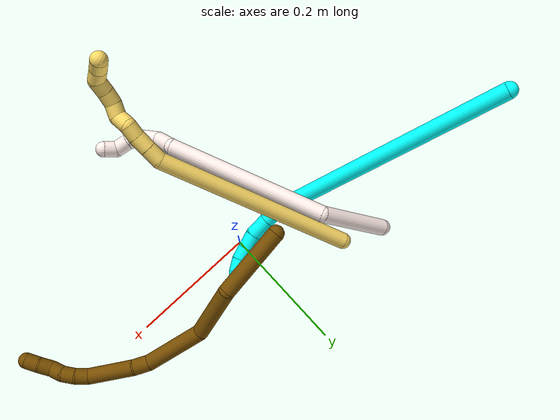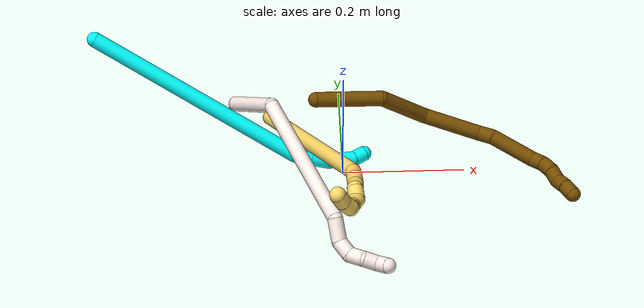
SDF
<sdf version="1.7">
 <world name="default">
  <model name="3">
   <static>0</static>
   <link name="3">
    <collision name="collision-cylinder-e_1_1_4">
     <pose>0.082164 -0.035865 -0.164601 2.92705 0.453782 2.26873</pose>
     <geometry><cylinder><radius>0.0125</radius><length>0.374864</length></cylinder></geometry>
     <surface>
      <friction><ode><mu>1.16</mu><mu2>1.16</mu2><slip1>0</slip1><slip2>0</slip2></ode></friction>
      <contact><ode><kp>1e+06</kp><kd>1</kd><max_vel>0</max_vel><min_depth>0.001</min_depth></ode></contact>
     </surface>
    </collision>
    <visual name="visual-cylinder-e_1_1_4">
     <pose>0.082164 -0.035865 -0.164601 2.92705 0.453782 2.26873</pose>
     <geometry><cylinder><radius>0.0125</radius><length>0.374864</length></cylinder></geometry>
     <material><ambient>0.003922 1 0.996078 1</ambient></material>
    </visual>
    <collision name="collision-cylinder-e_2_4_5">
     <pose>0.167229 -0.071087 -0.342678 -3.09386 0.211795 -2.69977</pose>
     <geometry><cylinder><radius>0.0125</radius><length>0.0276</length></cylinder></geometry>
     <surface>
      <friction><ode><mu>1.16</mu><mu2>1.16</mu2><slip1>0</slip1><slip2>0</slip2></ode></friction>
      <contact><ode><kp>1e+06</kp><kd>1</kd><max_vel>0</max_vel><min_depth>0.001</min_depth></ode></contact>
     </surface>
    </collision>
    <visual name="visual-cylinder-e_2_4_5">
     <pose>0.167229 -0.071087 -0.342678 -3.09386 0.211795 -2.69977</pose>
     <geometry><cylinder><radius>0.0125</radius><length>0.0276</length></cylinder></geometry>
     <material><ambient>0.003922 1 0.996078 1</ambient></material>
    </visual>
    <collision name="collision-cylinder-e_3_5_6">
     <pose>0.173451 -0.069166 -0.37144 -3.05824 0.213216 -2.39842</pose>
     <geometry><cylinder><radius>0.0125</radius><length>0.03139</length></cylinder></geometry>
     <surface>
      <friction><ode><mu>1.16</mu><mu2>1.16</mu2><slip1>0</slip1><slip2>0</slip2></ode></friction>
      <contact><ode><kp>1e+06</kp><kd>1</kd><max_vel>0</max_vel><min_depth>0.001</min_depth></ode></contact>
     </surface>
    </collision>
    <visual name="visual-cylinder-e_3_5_6">
     <pose>0.173451 -0.069166 -0.37144 -3.05824 0.213216 -2.39842</pose>
     <geometry><cylinder><radius>0.0125</radius><length>0.03139</length></cylinder></geometry>
     <material><ambient>0.003922 1 0.996078 1</ambient></material>
    </visual>
    <collision name="collision-cylinder-e_4_6_7">
     <pose>0.176426 -0.06525 -0.398292 -2.91726 -0.02917 0.257555</pose>
     <geometry><cylinder><radius>0.0125</radius><length>0.023736</length></cylinder></geometry>
     <surface>
      <friction><ode><mu>1.16</mu><mu2>1.16</mu2><slip1>0</slip1><slip2>0</slip2></ode></friction>
      <contact><ode><kp>1e+06</kp><kd>1</kd><max_vel>0</max_vel><min_depth>0.001</min_depth></ode></contact>
     </surface>
    </collision>
    <visual name="visual-cylinder-e_4_6_7">
     <pose>0.176426 -0.06525 -0.398292 -2.91726 -0.02917 0.257555</pose>
     <geometry><cylinder><radius>0.0125</radius><length>0.023736</length></cylinder></geometry>
     <material><ambient>0.003922 1 0.996078 1</ambient></material>
    </visual>
    <collision name="collision-cylinder-e_5_7_8">
     <pose>0.17577 -0.060061 -0.42027 -2.90138 -0.028948 0.238738</pose>
     <geometry><cylinder><radius>0.0125</radius><length>0.021448</length></cylinder></geometry>
     <surface>
      <friction><ode><mu>1.16</mu><mu2>1.16</mu2><slip1>0</slip1><slip2>0</slip2></ode></friction>
      <contact><ode><kp>1e+06</kp><kd>1</kd><max_vel>0</max_vel><min_depth>0.001</min_depth></ode></contact>
     </surface>
    </collision>
    <visual name="visual-cylinder-e_5_7_8">
     <pose>0.17577 -0.060061 -0.42027 -2.90138 -0.028948 0.238738</pose>
     <geometry><cylinder><radius>0.0125</radius><length>0.021448</length></cylinder></geometry>
     <material><ambient>0.003922 1 0.996078 1</ambient></material>
    </visual>
    <collision name="collision-cylinder-e_6_8_2">
     <pose>0.172913 -0.052532 -0.439546 -2.62993 -0.24543 0.881219</pose>
     <geometry><cylinder><radius>0.0125</radius><length>0.020963</length></cylinder></geometry>
     <surface>
      <friction><ode><mu>1.16</mu><mu2>1.16</mu2><slip1>0</slip1><slip2>0</slip2></ode></friction>
      <contact><ode><kp>1e+06</kp><kd>1</kd><max_vel>0</max_vel><min_depth>0.001</min_depth></ode></contact>
     </surface>
    </collision>
    <visual name="visual-cylinder-e_6_8_2">
     <pose>0.172913 -0.052532 -0.439546 -2.62993 -0.24543 0.881219</pose>
     <geometry><cylinder><radius>0.0125</radius><length>0.020963</length></cylinder></geometry>
     <material><ambient>0.003922 1 0.996078 1</ambient></material>
    </visual>
    <collision name="collision-sphere-2">
     <pose>0.170366 -0.047554 -0.448412 0 -0 0</pose>
     <geometry><sphere><radius>0.0125</radius></sphere></geometry>
     <surface>
      <friction><ode><mu>1.16</mu><mu2>1.16</mu2><slip1>0</slip1><slip2>0</slip2></ode></friction>
      <contact><ode><kp>1e+06</kp><kd>1</kd><max_vel>0</max_vel><min_depth>0.001</min_depth></ode></contact>
     </surface>
    </collision>
    <visual name="visual-sphere-2">
     <pose>0.170366 -0.047554 -0.448412 0 -0 0</pose>
     <geometry><sphere><radius>0.0125</radius></sphere></geometry>
     <material><ambient>0.003922 1 0.996078 1</ambient></material>
    </visual>
    <collision name="collision-sphere-4">
     <pose>0.164329 -0.071731 -0.329202 0 -0 0</pose>
     <geometry><sphere><radius>0.0125</radius></sphere></geometry>
     <surface>
      <friction><ode><mu>1.16</mu><mu2>1.16</mu2><slip1>0</slip1><slip2>0</slip2></ode></friction>
      <contact><ode><kp>1e+06</kp><kd>1</kd><max_vel>0</max_vel><min_depth>0.001</min_depth></ode></contact>
     </surface>
    </collision>
    <visual name="visual-sphere-4">
     <pose>0.164329 -0.071731 -0.329202 0 -0 0</pose>
     <geometry><sphere><radius>0.0125</radius></sphere></geometry>
     <material><ambient>0.003922 1 0.996078 1</ambient></material>
    </visual>
    <collision name="collision-sphere-1">
     <geometry><sphere><radius>0.0125</radius></sphere></geometry>
     <surface>
      <friction><ode><mu>1.16</mu><mu2>1.16</mu2><slip1>0</slip1><slip2>0</slip2></ode></friction>
      <contact><ode><kp>1e+06</kp><kd>1</kd><max_vel>0</max_vel><min_depth>0.001</min_depth></ode></contact>
     </surface>
    </collision>
    <visual name="visual-sphere-1">
     <geometry><sphere><radius>0.0125</radius></sphere></geometry>
     <material><ambient>0.003922 1 0.996078 1</ambient></material>
    </visual>
    <collision name="collision-sphere-8">
     <pose>0.17546 -0.05751 -0.430681 0 -0 0</pose>
     <geometry><sphere><radius>0.0125</radius></sphere></geometry>
     <surface>
      <friction><ode><mu>1.16</mu><mu2>1.16</mu2><slip1>0</slip1><slip2>0</slip2></ode></friction>
      <contact><ode><kp>1e+06</kp><kd>1</kd><max_vel>0</max_vel><min_depth>0.001</min_depth></ode></contact>
     </surface>
    </collision>
    <visual name="visual-sphere-8">
     <pose>0.17546 -0.05751 -0.430681 0 -0 0</pose>
     <geometry><sphere><radius>0.0125</radius></sphere></geometry>
     <material><ambient>0.003922 1 0.996078 1</ambient></material>
    </visual>
    <collision name="collision-sphere-5">
     <pose>0.17013 -0.070443 -0.356154 0 -0 0</pose>
     <geometry><sphere><radius>0.0125</radius></sphere></geometry>
     <surface>
      <friction><ode><mu>1.16</mu><mu2>1.16</mu2><slip1>0</slip1><slip2>0</slip2></ode></friction>
      <contact><ode><kp>1e+06</kp><kd>1</kd><max_vel>0</max_vel><min_depth>0.001</min_depth></ode></contact>
     </surface>
    </collision>
    <visual name="visual-sphere-5">
     <pose>0.17013 -0.070443 -0.356154 0 -0 0</pose>
     <geometry><sphere><radius>0.0125</radius></sphere></geometry>
     <material><ambient>0.003922 1 0.996078 1</ambient></material>
    </visual>
    <collision name="collision-sphere-6">
     <pose>0.176773 -0.067889 -0.386727 0 -0 0</pose>
     <geometry><sphere><radius>0.0125</radius></sphere></geometry>
     <surface>
      <friction><ode><mu>1.16</mu><mu2>1.16</mu2><slip1>0</slip1><slip2>0</slip2></ode></friction>
      <contact><ode><kp>1e+06</kp><kd>1</kd><max_vel>0</max_vel><min_depth>0.001</min_depth></ode></contact>
     </surface>
    </collision>
    <visual name="visual-sphere-6">
     <pose>0.176773 -0.067889 -0.386727 0 -0 0</pose>
     <geometry><sphere><radius>0.0125</radius></sphere></geometry>
     <material><ambient>0.003922 1 0.996078 1</ambient></material>
    </visual>
    <collision name="collision-sphere-7">
     <pose>0.17608 -0.062611 -0.409858 0 -0 0</pose>
     <geometry><sphere><radius>0.0125</radius></sphere></geometry>
     <surface>
      <friction><ode><mu>1.16</mu><mu2>1.16</mu2><slip1>0</slip1><slip2>0</slip2></ode></friction>
      <contact><ode><kp>1e+06</kp><kd>1</kd><max_vel>0</max_vel><min_depth>0.001</min_depth></ode></contact>
     </surface>
    </collision>
    <visual name="visual-sphere-7">
     <pose>0.17608 -0.062611 -0.409858 0 -0 0</pose>
     <geometry><sphere><radius>0.0125</radius></sphere></geometry>
     <material><ambient>0.003922 1 0.996078 1</ambient></material>
    </visual>
    <inertial>
     <pose>0.104886 -0.043032 -0.221004 0 -0 0</pose>
     <mass>0.5</mass>
     <inertia>
      <ixx>0.0005</ixx>
      <ixy>0</ixy>
      <ixz>0</ixz>
      <iyy>0.006109</iyy>
      <iyz>0</iyz>
      <izz>-0.001126</izz>
     </inertia>
    </inertial>
   </link>
   <pose>-0.397509 0.1016 0.212309 1.13137 -0.180629 -1.23198</pose>
  </model>
  <model name="5">
   <static>0</static>
   <link name="5">
    <collision name="collision-cylinder-e_1_1_4">
     <pose>0.023404 -0.002144 0.155188 0.013815 0.149667 0.001036</pose>
     <geometry><cylinder><radius>0.0125</radius><length>0.313915</length></cylinder></geometry>
     <surface>
      <friction><ode><mu>1.16</mu><mu2>1.16</mu2><slip1>0</slip1><slip2>0</slip2></ode></friction>
      <contact><ode><kp>1e+06</kp><kd>1</kd><max_vel>0</max_vel><min_depth>0.001</min_depth></ode></contact>
     </surface>
    </collision>
    <visual name="visual-cylinder-e_1_1_4">
     <pose>0.023404 -0.002144 0.155188 0.013815 0.149667 0.001036</pose>
     <geometry><cylinder><radius>0.0125</radius><length>0.313915</length></cylinder></geometry>
     <material><ambient>1 0.858824 0.4 1</ambient></material>
    </visual>
    <collision name="collision-cylinder-e_2_4_5">
     <pose>0.044251 -0.005403 0.321786 0.097442 -0.219377 -0.01074</pose>
     <geometry><cylinder><radius>0.0125</radius><length>0.023491</length></cylinder></geometry>
     <surface>
      <friction><ode><mu>1.16</mu><mu2>1.16</mu2><slip1>0</slip1><slip2>0</slip2></ode></friction>
      <contact><ode><kp>1e+06</kp><kd>1</kd><max_vel>0</max_vel><min_depth>0.001</min_depth></ode></contact>
     </surface>
    </collision>
    <visual name="visual-cylinder-e_2_4_5">
     <pose>0.044251 -0.005403 0.321786 0.097442 -0.219377 -0.01074</pose>
     <geometry><cylinder><radius>0.0125</radius><length>0.023491</length></cylinder></geometry>
     <material><ambient>1 0.858824 0.4 1</ambient></material>
    </visual>
    <collision name="collision-cylinder-e_3_5_6">
     <pose>0.039161 -0.008139 0.344027 0.148506 -0.227374 -0.016987</pose>
     <geometry><cylinder><radius>0.0125</radius><length>0.022485</length></cylinder></geometry>
     <surface>
      <friction><ode><mu>1.16</mu><mu2>1.16</mu2><slip1>0</slip1><slip2>0</slip2></ode></friction>
      <contact><ode><kp>1e+06</kp><kd>1</kd><max_vel>0</max_vel><min_depth>0.001</min_depth></ode></contact>
     </surface>
    </collision>
    <visual name="visual-cylinder-e_3_5_6">
     <pose>0.039161 -0.008139 0.344027 0.148506 -0.227374 -0.016987</pose>
     <geometry><cylinder><radius>0.0125</radius><length>0.022485</length></cylinder></geometry>
     <material><ambient>1 0.858824 0.4 1</ambient></material>
    </visual>
    <collision name="collision-cylinder-e_4_6_7">
     <pose>0.033163 -0.010058 0.364285 0.031599 -0.352017 -0.00562</pose>
     <geometry><cylinder><radius>0.0125</radius><length>0.020091</length></cylinder></geometry>
     <surface>
      <friction><ode><mu>1.16</mu><mu2>1.16</mu2><slip1>0</slip1><slip2>0</slip2></ode></friction>
      <contact><ode><kp>1e+06</kp><kd>1</kd><max_vel>0</max_vel><min_depth>0.001</min_depth></ode></contact>
     </surface>
    </collision>
    <visual name="visual-cylinder-e_4_6_7">
     <pose>0.033163 -0.010058 0.364285 0.031599 -0.352017 -0.00562</pose>
     <geometry><cylinder><radius>0.0125</radius><length>0.020091</length></cylinder></geometry>
     <material><ambient>1 0.858824 0.4 1</ambient></material>
    </visual>
    <collision name="collision-cylinder-e_5_7_8">
     <pose>0.028727 -0.016496 0.381547 0.664584 -0.097412 -0.033639</pose>
     <geometry><cylinder><radius>0.0125</radius><length>0.020008</length></cylinder></geometry>
     <surface>
      <friction><ode><mu>1.16</mu><mu2>1.16</mu2><slip1>0</slip1><slip2>0</slip2></ode></friction>
      <contact><ode><kp>1e+06</kp><kd>1</kd><max_vel>0</max_vel><min_depth>0.001</min_depth></ode></contact>
     </surface>
    </collision>
    <visual name="visual-cylinder-e_5_7_8">
     <pose>0.028727 -0.016496 0.381547 0.664584 -0.097412 -0.033639</pose>
     <geometry><cylinder><radius>0.0125</radius><length>0.020008</length></cylinder></geometry>
     <material><ambient>1 0.858824 0.4 1</ambient></material>
    </visual>
    <collision name="collision-cylinder-e_6_8_9">
     <pose>0.021577 -0.023939 0.397146 0.166231 -0.665478 -0.057564</pose>
     <geometry><cylinder><radius>0.0125</radius><length>0.020009</length></cylinder></geometry>
     <surface>
      <friction><ode><mu>1.16</mu><mu2>1.16</mu2><slip1>0</slip1><slip2>0</slip2></ode></friction>
      <contact><ode><kp>1e+06</kp><kd>1</kd><max_vel>0</max_vel><min_depth>0.001</min_depth></ode></contact>
     </surface>
    </collision>
    <visual name="visual-cylinder-e_6_8_9">
     <pose>0.021577 -0.023939 0.397146 0.166231 -0.665478 -0.057564</pose>
     <geometry><cylinder><radius>0.0125</radius><length>0.020009</length></cylinder></geometry>
     <material><ambient>1 0.858824 0.4 1</ambient></material>
    </visual>
    <collision name="collision-cylinder-e_7_9_10">
     <pose>0.011522 -0.023572 0.413973 -0.182021 -0.398177 0.036822</pose>
     <geometry><cylinder><radius>0.0125</radius><length>0.020001</length></cylinder></geometry>
     <surface>
      <friction><ode><mu>1.16</mu><mu2>1.16</mu2><slip1>0</slip1><slip2>0</slip2></ode></friction>
      <contact><ode><kp>1e+06</kp><kd>1</kd><max_vel>0</max_vel><min_depth>0.001</min_depth></ode></contact>
     </surface>
    </collision>
    <visual name="visual-cylinder-e_7_9_10">
     <pose>0.011522 -0.023572 0.413973 -0.182021 -0.398177 0.036822</pose>
     <geometry><cylinder><radius>0.0125</radius><length>0.020001</length></cylinder></geometry>
     <material><ambient>1 0.858824 0.4 1</ambient></material>
    </visual>
    <collision name="collision-cylinder-e_8_10_11">
     <pose>0.004565 -0.019164 0.43215 -0.292146 -0.313056 0.046429</pose>
     <geometry><cylinder><radius>0.0125</radius><length>0.02</length></cylinder></geometry>
     <surface>
      <friction><ode><mu>1.16</mu><mu2>1.16</mu2><slip1>0</slip1><slip2>0</slip2></ode></friction>
      <contact><ode><kp>1e+06</kp><kd>1</kd><max_vel>0</max_vel><min_depth>0.001</min_depth></ode></contact>
     </surface>
    </collision>
    <visual name="visual-cylinder-e_8_10_11">
     <pose>0.004565 -0.019164 0.43215 -0.292146 -0.313056 0.046429</pose>
     <geometry><cylinder><radius>0.0125</radius><length>0.02</length></cylinder></geometry>
     <material><ambient>1 0.858824 0.4 1</ambient></material>
    </visual>
    <collision name="collision-cylinder-e_9_11_12">
     <pose>-0.005456 -0.010217 0.444907 -1.03964 -0.767189 0.454002</pose>
     <geometry><cylinder><radius>0.0125</radius><length>0.02</length></cylinder></geometry>
     <surface>
      <friction><ode><mu>1.16</mu><mu2>1.16</mu2><slip1>0</slip1><slip2>0</slip2></ode></friction>
      <contact><ode><kp>1e+06</kp><kd>1</kd><max_vel>0</max_vel><min_depth>0.001</min_depth></ode></contact>
     </surface>
    </collision>
    <visual name="visual-cylinder-e_9_11_12">
     <pose>-0.005456 -0.010217 0.444907 -1.03964 -0.767189 0.454002</pose>
     <geometry><cylinder><radius>0.0125</radius><length>0.02</length></cylinder></geometry>
     <material><ambient>1 0.858824 0.4 1</ambient></material>
    </visual>
    <collision name="collision-cylinder-e_10_12_2">
     <pose>-0.017849 0.003503 0.452274 -1.11096 -0.57658 0.364046</pose>
     <geometry><cylinder><radius>0.0125</radius><length>0.02</length></cylinder></geometry>
     <surface>
      <friction><ode><mu>1.16</mu><mu2>1.16</mu2><slip1>0</slip1><slip2>0</slip2></ode></friction>
      <contact><ode><kp>1e+06</kp><kd>1</kd><max_vel>0</max_vel><min_depth>0.001</min_depth></ode></contact>
     </surface>
    </collision>
    <visual name="visual-cylinder-e_10_12_2">
     <pose>-0.017849 0.003503 0.452274 -1.11096 -0.57658 0.364046</pose>
     <geometry><cylinder><radius>0.0125</radius><length>0.02</length></cylinder></geometry>
     <material><ambient>1 0.858824 0.4 1</ambient></material>
    </visual>
    <collision name="collision-sphere-2">
     <pose>-0.023301 0.011016 0.455995 0 -0 0</pose>
     <geometry><sphere><radius>0.0125</radius></sphere></geometry>
     <surface>
      <friction><ode><mu>1.16</mu><mu2>1.16</mu2><slip1>0</slip1><slip2>0</slip2></ode></friction>
      <contact><ode><kp>1e+06</kp><kd>1</kd><max_vel>0</max_vel><min_depth>0.001</min_depth></ode></contact>
     </surface>
    </collision>
    <visual name="visual-sphere-2">
     <pose>-0.023301 0.011016 0.455995 0 -0 0</pose>
     <geometry><sphere><radius>0.0125</radius></sphere></geometry>
     <material><ambient>1 0.858824 0.4 1</ambient></material>
    </visual>
    <collision name="collision-sphere-12">
     <pose>-0.012397 -0.00401 0.448553 0 -0 0</pose>
     <geometry><sphere><radius>0.0125</radius></sphere></geometry>
     <surface>
      <friction><ode><mu>1.16</mu><mu2>1.16</mu2><slip1>0</slip1><slip2>0</slip2></ode></friction>
      <contact><ode><kp>1e+06</kp><kd>1</kd><max_vel>0</max_vel><min_depth>0.001</min_depth></ode></contact>
     </surface>
    </collision>
    <visual name="visual-sphere-12">
     <pose>-0.012397 -0.00401 0.448553 0 -0 0</pose>
     <geometry><sphere><radius>0.0125</radius></sphere></geometry>
     <material><ambient>1 0.858824 0.4 1</ambient></material>
    </visual>
    <collision name="collision-sphere-11">
     <pose>0.001485 -0.016423 0.441261 0 -0 0</pose>
     <geometry><sphere><radius>0.0125</radius></sphere></geometry>
     <surface>
      <friction><ode><mu>1.16</mu><mu2>1.16</mu2><slip1>0</slip1><slip2>0</slip2></ode></friction>
      <contact><ode><kp>1e+06</kp><kd>1</kd><max_vel>0</max_vel><min_depth>0.001</min_depth></ode></contact>
     </surface>
    </collision>
    <visual name="visual-sphere-11">
     <pose>0.001485 -0.016423 0.441261 0 -0 0</pose>
     <geometry><sphere><radius>0.0125</radius></sphere></geometry>
     <material><ambient>1 0.858824 0.4 1</ambient></material>
    </visual>
    <collision name="collision-sphere-10">
     <pose>0.007644 -0.021904 0.423039 0 -0 0</pose>
     <geometry><sphere><radius>0.0125</radius></sphere></geometry>
     <surface>
      <friction><ode><mu>1.16</mu><mu2>1.16</mu2><slip1>0</slip1><slip2>0</slip2></ode></friction>
      <contact><ode><kp>1e+06</kp><kd>1</kd><max_vel>0</max_vel><min_depth>0.001</min_depth></ode></contact>
     </surface>
    </collision>
    <visual name="visual-sphere-10">
     <pose>0.007644 -0.021904 0.423039 0 -0 0</pose>
     <geometry><sphere><radius>0.0125</radius></sphere></geometry>
     <material><ambient>1 0.858824 0.4 1</ambient></material>
    </visual>
    <collision name="collision-sphere-9">
     <pose>0.0154 -0.025241 0.404907 0 -0 0</pose>
     <geometry><sphere><radius>0.0125</radius></sphere></geometry>
     <surface>
      <friction><ode><mu>1.16</mu><mu2>1.16</mu2><slip1>0</slip1><slip2>0</slip2></ode></friction>
      <contact><ode><kp>1e+06</kp><kd>1</kd><max_vel>0</max_vel><min_depth>0.001</min_depth></ode></contact>
     </surface>
    </collision>
    <visual name="visual-sphere-9">
     <pose>0.0154 -0.025241 0.404907 0 -0 0</pose>
     <geometry><sphere><radius>0.0125</radius></sphere></geometry>
     <material><ambient>1 0.858824 0.4 1</ambient></material>
    </visual>
    <collision name="collision-sphere-4">
     <pose>0.046807 -0.004288 0.310376 0 -0 0</pose>
     <geometry><sphere><radius>0.0125</radius></sphere></geometry>
     <surface>
      <friction><ode><mu>1.16</mu><mu2>1.16</mu2><slip1>0</slip1><slip2>0</slip2></ode></friction>
      <contact><ode><kp>1e+06</kp><kd>1</kd><max_vel>0</max_vel><min_depth>0.001</min_depth></ode></contact>
     </surface>
    </collision>
    <visual name="visual-sphere-4">
     <pose>0.046807 -0.004288 0.310376 0 -0 0</pose>
     <geometry><sphere><radius>0.0125</radius></sphere></geometry>
     <material><ambient>1 0.858824 0.4 1</ambient></material>
    </visual>
    <collision name="collision-sphere-1">
     <geometry><sphere><radius>0.0125</radius></sphere></geometry>
     <surface>
      <friction><ode><mu>1.16</mu><mu2>1.16</mu2><slip1>0</slip1><slip2>0</slip2></ode></friction>
      <contact><ode><kp>1e+06</kp><kd>1</kd><max_vel>0</max_vel><min_depth>0.001</min_depth></ode></contact>
     </surface>
    </collision>
    <visual name="visual-sphere-1">
     <geometry><sphere><radius>0.0125</radius></sphere></geometry>
     <material><ambient>1 0.858824 0.4 1</ambient></material>
    </visual>
    <collision name="collision-sphere-8">
     <pose>0.027754 -0.022637 0.389385 0 -0 0</pose>
     <geometry><sphere><radius>0.0125</radius></sphere></geometry>
     <surface>
      <friction><ode><mu>1.16</mu><mu2>1.16</mu2><slip1>0</slip1><slip2>0</slip2></ode></friction>
      <contact><ode><kp>1e+06</kp><kd>1</kd><max_vel>0</max_vel><min_depth>0.001</min_depth></ode></contact>
     </surface>
    </collision>
    <visual name="visual-sphere-8">
     <pose>0.027754 -0.022637 0.389385 0 -0 0</pose>
     <geometry><sphere><radius>0.0125</radius></sphere></geometry>
     <material><ambient>1 0.858824 0.4 1</ambient></material>
    </visual>
    <collision name="collision-sphere-5">
     <pose>0.041695 -0.006519 0.333195 0 -0 0</pose>
     <geometry><sphere><radius>0.0125</radius></sphere></geometry>
     <surface>
      <friction><ode><mu>1.16</mu><mu2>1.16</mu2><slip1>0</slip1><slip2>0</slip2></ode></friction>
      <contact><ode><kp>1e+06</kp><kd>1</kd><max_vel>0</max_vel><min_depth>0.001</min_depth></ode></contact>
     </surface>
    </collision>
    <visual name="visual-sphere-5">
     <pose>0.041695 -0.006519 0.333195 0 -0 0</pose>
     <geometry><sphere><radius>0.0125</radius></sphere></geometry>
     <material><ambient>1 0.858824 0.4 1</ambient></material>
    </visual>
    <collision name="collision-sphere-6">
     <pose>0.036627 -0.00976 0.35486 0 -0 0</pose>
     <geometry><sphere><radius>0.0125</radius></sphere></geometry>
     <surface>
      <friction><ode><mu>1.16</mu><mu2>1.16</mu2><slip1>0</slip1><slip2>0</slip2></ode></friction>
      <contact><ode><kp>1e+06</kp><kd>1</kd><max_vel>0</max_vel><min_depth>0.001</min_depth></ode></contact>
     </surface>
    </collision>
    <visual name="visual-sphere-6">
     <pose>0.036627 -0.00976 0.35486 0 -0 0</pose>
     <geometry><sphere><radius>0.0125</radius></sphere></geometry>
     <material><ambient>1 0.858824 0.4 1</ambient></material>
    </visual>
    <collision name="collision-sphere-7">
     <pose>0.0297 -0.010356 0.37371 0 -0 0</pose>
     <geometry><sphere><radius>0.0125</radius></sphere></geometry>
     <surface>
      <friction><ode><mu>1.16</mu><mu2>1.16</mu2><slip1>0</slip1><slip2>0</slip2></ode></friction>
      <contact><ode><kp>1e+06</kp><kd>1</kd><max_vel>0</max_vel><min_depth>0.001</min_depth></ode></contact>
     </surface>
    </collision>
    <visual name="visual-sphere-7">
     <pose>0.0297 -0.010356 0.37371 0 -0 0</pose>
     <geometry><sphere><radius>0.0125</radius></sphere></geometry>
     <material><ambient>1 0.858824 0.4 1</ambient></material>
    </visual>
    <inertial>
     <pose>0.02159 -0.005966 0.243553 0 -0 0</pose>
     <mass>0.5</mass>
     <inertia>
      <ixx>0.002575</ixx>
      <ixy>0</ixy>
      <ixz>0</ixz>
      <iyy>0.002607</iyy>
      <iyz>0</iyz>
      <izz>-0.000311</izz>
     </inertia>
    </inertial>
   </link>
   <pose>-0.118313 0.107067 0.03204 1.15443 0.120013 0.239807</pose>
  </model>
  <model name="11">
   <static>0</static>
   <link name="11">
    <collision name="collision-cylinder-e_1_1_4">
     <pose>-0.018468 -0.044573 -0.030807 2.17556 -0.328495 -0.612189</pose>
     <geometry><cylinder><radius>0.0125</radius><length>0.114489</length></cylinder></geometry>
     <surface>
      <friction><ode><mu>1.16</mu><mu2>1.16</mu2><slip1>0</slip1><slip2>0</slip2></ode></friction>
      <contact><ode><kp>1e+06</kp><kd>1</kd><max_vel>0</max_vel><min_depth>0.001</min_depth></ode></contact>
     </surface>
    </collision>
    <visual name="visual-cylinder-e_1_1_4">
     <pose>-0.018468 -0.044573 -0.030807 2.17556 -0.328495 -0.612189</pose>
     <geometry><cylinder><radius>0.0125</radius><length>0.114489</length></cylinder></geometry>
     <material><ambient>1 0.933333 0.909804 1</ambient></material>
    </visual>
    <collision name="collision-cylinder-e_2_4_5">
     <pose>0.002826 -0.205718 -0.089311 1.80407 0.320427 0.403422</pose>
     <geometry><cylinder><radius>0.0125</radius><length>0.252484</length></cylinder></geometry>
     <surface>
      <friction><ode><mu>1.16</mu><mu2>1.16</mu2><slip1>0</slip1><slip2>0</slip2></ode></friction>
      <contact><ode><kp>1e+06</kp><kd>1</kd><max_vel>0</max_vel><min_depth>0.001</min_depth></ode></contact>
     </surface>
    </collision>
    <visual name="visual-cylinder-e_2_4_5">
     <pose>0.002826 -0.205718 -0.089311 1.80407 0.320427 0.403422</pose>
     <geometry><cylinder><radius>0.0125</radius><length>0.252484</length></cylinder></geometry>
     <material><ambient>1 0.933333 0.909804 1</ambient></material>
    </visual>
    <collision name="collision-cylinder-e_3_5_6">
     <pose>0.055844 -0.335086 -0.112363 1.2226 0.772067 0.554996</pose>
     <geometry><cylinder><radius>0.0125</radius><length>0.038002</length></cylinder></geometry>
     <surface>
      <friction><ode><mu>1.16</mu><mu2>1.16</mu2><slip1>0</slip1><slip2>0</slip2></ode></friction>
      <contact><ode><kp>1e+06</kp><kd>1</kd><max_vel>0</max_vel><min_depth>0.001</min_depth></ode></contact>
     </surface>
    </collision>
    <visual name="visual-cylinder-e_3_5_6">
     <pose>0.055844 -0.335086 -0.112363 1.2226 0.772067 0.554996</pose>
     <geometry><cylinder><radius>0.0125</radius><length>0.038002</length></cylinder></geometry>
     <material><ambient>1 0.933333 0.909804 1</ambient></material>
    </visual>
    <collision name="collision-cylinder-e_4_6_7">
     <pose>0.072437 -0.360635 -0.106442 1.47111 0.254728 0.230747</pose>
     <geometry><cylinder><radius>0.0125</radius><length>0.026487</length></cylinder></geometry>
     <surface>
      <friction><ode><mu>1.16</mu><mu2>1.16</mu2><slip1>0</slip1><slip2>0</slip2></ode></friction>
      <contact><ode><kp>1e+06</kp><kd>1</kd><max_vel>0</max_vel><min_depth>0.001</min_depth></ode></contact>
     </surface>
    </collision>
    <visual name="visual-cylinder-e_4_6_7">
     <pose>0.072437 -0.360635 -0.106442 1.47111 0.254728 0.230747</pose>
     <geometry><cylinder><radius>0.0125</radius><length>0.026487</length></cylinder></geometry>
     <material><ambient>1 0.933333 0.909804 1</ambient></material>
    </visual>
    <collision name="collision-cylinder-e_5_7_8">
     <pose>0.071747 -0.384844 -0.104753 1.5347 -0.337781 -0.326017</pose>
     <geometry><cylinder><radius>0.0125</radius><length>0.024303</length></cylinder></geometry>
     <surface>
      <friction><ode><mu>1.16</mu><mu2>1.16</mu2><slip1>0</slip1><slip2>0</slip2></ode></friction>
      <contact><ode><kp>1e+06</kp><kd>1</kd><max_vel>0</max_vel><min_depth>0.001</min_depth></ode></contact>
     </surface>
    </collision>
    <visual name="visual-cylinder-e_5_7_8">
     <pose>0.071747 -0.384844 -0.104753 1.5347 -0.337781 -0.326017</pose>
     <geometry><cylinder><radius>0.0125</radius><length>0.024303</length></cylinder></geometry>
     <material><ambient>1 0.933333 0.909804 1</ambient></material>
    </visual>
    <collision name="collision-cylinder-e_6_8_9">
     <pose>0.064324 -0.406069 -0.098866 1.06001 -0.294473 -0.173362</pose>
     <geometry><cylinder><radius>0.0125</radius><length>0.0234</length></cylinder></geometry>
     <surface>
      <friction><ode><mu>1.16</mu><mu2>1.16</mu2><slip1>0</slip1><slip2>0</slip2></ode></friction>
      <contact><ode><kp>1e+06</kp><kd>1</kd><max_vel>0</max_vel><min_depth>0.001</min_depth></ode></contact>
     </surface>
    </collision>
    <visual name="visual-cylinder-e_6_8_9">
     <pose>0.064324 -0.406069 -0.098866 1.06001 -0.294473 -0.173362</pose>
     <geometry><cylinder><radius>0.0125</radius><length>0.0234</length></cylinder></geometry>
     <material><ambient>1 0.933333 0.909804 1</ambient></material>
    </visual>
    <collision name="collision-cylinder-e_7_9_2">
     <pose>0.057267 -0.425208 -0.096095 1.85158 -0.35906 -0.473399</pose>
     <geometry><cylinder><radius>0.0125</radius><length>0.020836</length></cylinder></geometry>
     <surface>
      <friction><ode><mu>1.16</mu><mu2>1.16</mu2><slip1>0</slip1><slip2>0</slip2></ode></friction>
      <contact><ode><kp>1e+06</kp><kd>1</kd><max_vel>0</max_vel><min_depth>0.001</min_depth></ode></contact>
     </surface>
    </collision>
    <visual name="visual-cylinder-e_7_9_2">
     <pose>0.057267 -0.425208 -0.096095 1.85158 -0.35906 -0.473399</pose>
     <geometry><cylinder><radius>0.0125</radius><length>0.020836</length></cylinder></geometry>
     <material><ambient>1 0.933333 0.909804 1</ambient></material>
    </visual>
    <collision name="collision-sphere-2">
     <pose>0.053607 -0.43458 -0.098798 0 -0 0</pose>
     <geometry><sphere><radius>0.0125</radius></sphere></geometry>
     <surface>
      <friction><ode><mu>1.16</mu><mu2>1.16</mu2><slip1>0</slip1><slip2>0</slip2></ode></friction>
      <contact><ode><kp>1e+06</kp><kd>1</kd><max_vel>0</max_vel><min_depth>0.001</min_depth></ode></contact>
     </surface>
    </collision>
    <visual name="visual-sphere-2">
     <pose>0.053607 -0.43458 -0.098798 0 -0 0</pose>
     <geometry><sphere><radius>0.0125</radius></sphere></geometry>
     <material><ambient>1 0.933333 0.909804 1</ambient></material>
    </visual>
    <collision name="collision-sphere-9">
     <pose>0.060928 -0.415836 -0.093392 0 -0 0</pose>
     <geometry><sphere><radius>0.0125</radius></sphere></geometry>
     <surface>
      <friction><ode><mu>1.16</mu><mu2>1.16</mu2><slip1>0</slip1><slip2>0</slip2></ode></friction>
      <contact><ode><kp>1e+06</kp><kd>1</kd><max_vel>0</max_vel><min_depth>0.001</min_depth></ode></contact>
     </surface>
    </collision>
    <visual name="visual-sphere-9">
     <pose>0.060928 -0.415836 -0.093392 0 -0 0</pose>
     <geometry><sphere><radius>0.0125</radius></sphere></geometry>
     <material><ambient>1 0.933333 0.909804 1</ambient></material>
    </visual>
    <collision name="collision-sphere-4">
     <pose>-0.036936 -0.089147 -0.061614 0 -0 0</pose>
     <geometry><sphere><radius>0.0125</radius></sphere></geometry>
     <surface>
      <friction><ode><mu>1.16</mu><mu2>1.16</mu2><slip1>0</slip1><slip2>0</slip2></ode></friction>
      <contact><ode><kp>1e+06</kp><kd>1</kd><max_vel>0</max_vel><min_depth>0.001</min_depth></ode></contact>
     </surface>
    </collision>
    <visual name="visual-sphere-4">
     <pose>-0.036936 -0.089147 -0.061614 0 -0 0</pose>
     <geometry><sphere><radius>0.0125</radius></sphere></geometry>
     <material><ambient>1 0.933333 0.909804 1</ambient></material>
    </visual>
    <collision name="collision-sphere-1">
     <geometry><sphere><radius>0.0125</radius></sphere></geometry>
     <surface>
      <friction><ode><mu>1.16</mu><mu2>1.16</mu2><slip1>0</slip1><slip2>0</slip2></ode></friction>
      <contact><ode><kp>1e+06</kp><kd>1</kd><max_vel>0</max_vel><min_depth>0.001</min_depth></ode></contact>
     </surface>
    </collision>
    <visual name="visual-sphere-1">
     <geometry><sphere><radius>0.0125</radius></sphere></geometry>
     <material><ambient>1 0.933333 0.909804 1</ambient></material>
    </visual>
    <collision name="collision-sphere-8">
     <pose>0.06772 -0.396302 -0.104339 0 -0 0</pose>
     <geometry><sphere><radius>0.0125</radius></sphere></geometry>
     <surface>
      <friction><ode><mu>1.16</mu><mu2>1.16</mu2><slip1>0</slip1><slip2>0</slip2></ode></friction>
      <contact><ode><kp>1e+06</kp><kd>1</kd><max_vel>0</max_vel><min_depth>0.001</min_depth></ode></contact>
     </surface>
    </collision>
    <visual name="visual-sphere-8">
     <pose>0.06772 -0.396302 -0.104339 0 -0 0</pose>
     <geometry><sphere><radius>0.0125</radius></sphere></geometry>
     <material><ambient>1 0.933333 0.909804 1</ambient></material>
    </visual>
    <collision name="collision-sphere-5">
     <pose>0.042589 -0.322289 -0.117008 0 -0 0</pose>
     <geometry><sphere><radius>0.0125</radius></sphere></geometry>
     <surface>
      <friction><ode><mu>1.16</mu><mu2>1.16</mu2><slip1>0</slip1><slip2>0</slip2></ode></friction>
      <contact><ode><kp>1e+06</kp><kd>1</kd><max_vel>0</max_vel><min_depth>0.001</min_depth></ode></contact>
     </surface>
    </collision>
    <visual name="visual-sphere-5">
     <pose>0.042589 -0.322289 -0.117008 0 -0 0</pose>
     <geometry><sphere><radius>0.0125</radius></sphere></geometry>
     <material><ambient>1 0.933333 0.909804 1</ambient></material>
    </visual>
    <collision name="collision-sphere-6">
     <pose>0.0691 -0.347882 -0.107718 0 -0 0</pose>
     <geometry><sphere><radius>0.0125</radius></sphere></geometry>
     <surface>
      <friction><ode><mu>1.16</mu><mu2>1.16</mu2><slip1>0</slip1><slip2>0</slip2></ode></friction>
      <contact><ode><kp>1e+06</kp><kd>1</kd><max_vel>0</max_vel><min_depth>0.001</min_depth></ode></contact>
     </surface>
    </collision>
    <visual name="visual-sphere-6">
     <pose>0.0691 -0.347882 -0.107718 0 -0 0</pose>
     <geometry><sphere><radius>0.0125</radius></sphere></geometry>
     <material><ambient>1 0.933333 0.909804 1</ambient></material>
    </visual>
    <collision name="collision-sphere-7">
     <pose>0.075774 -0.373387 -0.105167 0 -0 0</pose>
     <geometry><sphere><radius>0.0125</radius></sphere></geometry>
     <surface>
      <friction><ode><mu>1.16</mu><mu2>1.16</mu2><slip1>0</slip1><slip2>0</slip2></ode></friction>
      <contact><ode><kp>1e+06</kp><kd>1</kd><max_vel>0</max_vel><min_depth>0.001</min_depth></ode></contact>
     </surface>
    </collision>
    <visual name="visual-sphere-7">
     <pose>0.075774 -0.373387 -0.105167 0 -0 0</pose>
     <geometry><sphere><radius>0.0125</radius></sphere></geometry>
     <material><ambient>1 0.933333 0.909804 1</ambient></material>
    </visual>
    <inertial>
     <pose>0.014164 -0.214088 -0.080055 0 -0 0</pose>
     <mass>0.5</mass>
     <inertia>
      <ixx>0.001729</ixx>
      <ixy>0</ixy>
      <ixz>0</ixz>
      <iyy>0.00024</iyy>
      <iyz>0</iyz>
      <izz>0.000966</izz>
     </inertia>
    </inertial>
   </link>
   <pose>-0.175633 0.132277 0.042148 2.99108 0.693652 -2.45052</pose>
  </model>
  <model name="12">
   <static>0</static>
   <link name="12">
    <collision name="collision-cylinder-e_1_1_4">
     <pose>0.045089 0.006013 -0.0308 -2.94878 0.962775 -2.77548</pose>
     <geometry><cylinder><radius>0.0125</radius><length>0.10987</length></cylinder></geometry>
     <surface>
      <friction><ode><mu>1.16</mu><mu2>1.16</mu2><slip1>0</slip1><slip2>0</slip2></ode></friction>
      <contact><ode><kp>1e+06</kp><kd>1</kd><max_vel>0</max_vel><min_depth>0.001</min_depth></ode></contact>
     </surface>
    </collision>
    <visual name="visual-cylinder-e_1_1_4">
     <pose>0.045089 0.006013 -0.0308 -2.94878 0.962775 -2.77548</pose>
     <geometry><cylinder><radius>0.0125</radius><length>0.10987</length></cylinder></geometry>
     <material><ambient>0.466667 0.301961 0 1</ambient></material>
    </visual>
    <collision name="collision-cylinder-e_2_4_5">
     <pose>0.114686 -7.6e-05 -0.098033 2.82088 0.568149 2.12981</pose>
     <geometry><cylinder><radius>0.0125</radius><length>0.091092</length></cylinder></geometry>
     <surface>
      <friction><ode><mu>1.16</mu><mu2>1.16</mu2><slip1>0</slip1><slip2>0</slip2></ode></friction>
      <contact><ode><kp>1e+06</kp><kd>1</kd><max_vel>0</max_vel><min_depth>0.001</min_depth></ode></contact>
     </surface>
    </collision>
    <visual name="visual-cylinder-e_2_4_5">
     <pose>0.114686 -7.6e-05 -0.098033 2.82088 0.568149 2.12981</pose>
     <geometry><cylinder><radius>0.0125</radius><length>0.091092</length></cylinder></geometry>
     <material><ambient>0.466667 0.301961 0 1</ambient></material>
    </visual>
    <collision name="collision-cylinder-e_3_5_6">
     <pose>0.181625 -0.021926 -0.154213 2.68305 1.09206 2.40822</pose>
     <geometry><cylinder><radius>0.0125</radius><length>0.095613</length></cylinder></geometry>
     <surface>
      <friction><ode><mu>1.16</mu><mu2>1.16</mu2><slip1>0</slip1><slip2>0</slip2></ode></friction>
      <contact><ode><kp>1e+06</kp><kd>1</kd><max_vel>0</max_vel><min_depth>0.001</min_depth></ode></contact>
     </surface>
    </collision>
    <visual name="visual-cylinder-e_3_5_6">
     <pose>0.181625 -0.021926 -0.154213 2.68305 1.09206 2.40822</pose>
     <geometry><cylinder><radius>0.0125</radius><length>0.095613</length></cylinder></geometry>
     <material><ambient>0.466667 0.301961 0 1</ambient></material>
    </visual>
    <collision name="collision-cylinder-e_4_6_7">
     <pose>0.236334 -0.033424 -0.174983 2.09964 1.40718 1.95221</pose>
     <geometry><cylinder><radius>0.0125</radius><length>0.024886</length></cylinder></geometry>
     <surface>
      <friction><ode><mu>1.16</mu><mu2>1.16</mu2><slip1>0</slip1><slip2>0</slip2></ode></friction>
      <contact><ode><kp>1e+06</kp><kd>1</kd><max_vel>0</max_vel><min_depth>0.001</min_depth></ode></contact>
     </surface>
    </collision>
    <visual name="visual-cylinder-e_4_6_7">
     <pose>0.236334 -0.033424 -0.174983 2.09964 1.40718 1.95221</pose>
     <geometry><cylinder><radius>0.0125</radius><length>0.024886</length></cylinder></geometry>
     <material><ambient>0.466667 0.301961 0 1</ambient></material>
    </visual>
    <collision name="collision-cylinder-e_5_7_8">
     <pose>0.283035 -0.049139 -0.181278 1.93179 1.16164 1.51885</pose>
     <geometry><cylinder><radius>0.0125</radius><length>0.075043</length></cylinder></geometry>
     <surface>
      <friction><ode><mu>1.16</mu><mu2>1.16</mu2><slip1>0</slip1><slip2>0</slip2></ode></friction>
      <contact><ode><kp>1e+06</kp><kd>1</kd><max_vel>0</max_vel><min_depth>0.001</min_depth></ode></contact>
     </surface>
    </collision>
    <visual name="visual-cylinder-e_5_7_8">
     <pose>0.283035 -0.049139 -0.181278 1.93179 1.16164 1.51885</pose>
     <geometry><cylinder><radius>0.0125</radius><length>0.075043</length></cylinder></geometry>
     <material><ambient>0.466667 0.301961 0 1</ambient></material>
    </visual>
    <collision name="collision-cylinder-e_6_8_9">
     <pose>0.32753 -0.065287 -0.183841 0.678044 1.23817 0.492335</pose>
     <geometry><cylinder><radius>0.0125</radius><length>0.021309</length></cylinder></geometry>
     <surface>
      <friction><ode><mu>1.16</mu><mu2>1.16</mu2><slip1>0</slip1><slip2>0</slip2></ode></friction>
      <contact><ode><kp>1e+06</kp><kd>1</kd><max_vel>0</max_vel><min_depth>0.001</min_depth></ode></contact>
     </surface>
    </collision>
    <visual name="visual-cylinder-e_6_8_9">
     <pose>0.32753 -0.065287 -0.183841 0.678044 1.23817 0.492335</pose>
     <geometry><cylinder><radius>0.0125</radius><length>0.021309</length></cylinder></geometry>
     <material><ambient>0.466667 0.301961 0 1</ambient></material>
    </visual>
    <collision name="collision-cylinder-e_7_9_10">
     <pose>0.346329 -0.071901 -0.178473 1.03045 1.0362 0.624441</pose>
     <geometry><cylinder><radius>0.0125</radius><length>0.020289</length></cylinder></geometry>
     <surface>
      <friction><ode><mu>1.16</mu><mu2>1.16</mu2><slip1>0</slip1><slip2>0</slip2></ode></friction>
      <contact><ode><kp>1e+06</kp><kd>1</kd><max_vel>0</max_vel><min_depth>0.001</min_depth></ode></contact>
     </surface>
    </collision>
    <visual name="visual-cylinder-e_7_9_10">
     <pose>0.346329 -0.071901 -0.178473 1.03045 1.0362 0.624441</pose>
     <geometry><cylinder><radius>0.0125</radius><length>0.020289</length></cylinder></geometry>
     <material><ambient>0.466667 0.301961 0 1</ambient></material>
    </visual>
    <collision name="collision-cylinder-e_8_10_11">
     <pose>0.361737 -0.083322 -0.173105 1.20098 0.727894 0.51037</pose>
     <geometry><cylinder><radius>0.0125</radius><length>0.020078</length></cylinder></geometry>
     <surface>
      <friction><ode><mu>1.16</mu><mu2>1.16</mu2><slip1>0</slip1><slip2>0</slip2></ode></friction>
      <contact><ode><kp>1e+06</kp><kd>1</kd><max_vel>0</max_vel><min_depth>0.001</min_depth></ode></contact>
     </surface>
    </collision>
    <visual name="visual-cylinder-e_8_10_11">
     <pose>0.361737 -0.083322 -0.173105 1.20098 0.727894 0.51037</pose>
     <geometry><cylinder><radius>0.0125</radius><length>0.020078</length></cylinder></geometry>
     <material><ambient>0.466667 0.301961 0 1</ambient></material>
    </visual>
    <collision name="collision-cylinder-e_9_11_12">
     <pose>0.377054 -0.09354 -0.165264 0.561684 0.958693 0.297661</pose>
     <geometry><cylinder><radius>0.0125</radius><length>0.021108</length></cylinder></geometry>
     <surface>
      <friction><ode><mu>1.16</mu><mu2>1.16</mu2><slip1>0</slip1><slip2>0</slip2></ode></friction>
      <contact><ode><kp>1e+06</kp><kd>1</kd><max_vel>0</max_vel><min_depth>0.001</min_depth></ode></contact>
     </surface>
    </collision>
    <visual name="visual-cylinder-e_9_11_12">
     <pose>0.377054 -0.09354 -0.165264 0.561684 0.958693 0.297661</pose>
     <geometry><cylinder><radius>0.0125</radius><length>0.021108</length></cylinder></geometry>
     <material><ambient>0.466667 0.301961 0 1</ambient></material>
    </visual>
    <collision name="collision-cylinder-e_10_12_2">
     <pose>0.39382 -0.10185 -0.156211 0.913612 0.902514 0.467633</pose>
     <geometry><cylinder><radius>0.0125</radius><length>0.020713</length></cylinder></geometry>
     <surface>
      <friction><ode><mu>1.16</mu><mu2>1.16</mu2><slip1>0</slip1><slip2>0</slip2></ode></friction>
      <contact><ode><kp>1e+06</kp><kd>1</kd><max_vel>0</max_vel><min_depth>0.001</min_depth></ode></contact>
     </surface>
    </collision>
    <visual name="visual-cylinder-e_10_12_2">
     <pose>0.39382 -0.10185 -0.156211 0.913612 0.902514 0.467633</pose>
     <geometry><cylinder><radius>0.0125</radius><length>0.020713</length></cylinder></geometry>
     <material><ambient>0.466667 0.301961 0 1</ambient></material>
    </visual>
    <collision name="collision-sphere-2">
     <pose>0.401949 -0.106931 -0.152291 0 -0 0</pose>
     <geometry><sphere><radius>0.0125</radius></sphere></geometry>
     <surface>
      <friction><ode><mu>1.16</mu><mu2>1.16</mu2><slip1>0</slip1><slip2>0</slip2></ode></friction>
      <contact><ode><kp>1e+06</kp><kd>1</kd><max_vel>0</max_vel><min_depth>0.001</min_depth></ode></contact>
     </surface>
    </collision>
    <visual name="visual-sphere-2">
     <pose>0.401949 -0.106931 -0.152291 0 -0 0</pose>
     <geometry><sphere><radius>0.0125</radius></sphere></geometry>
     <material><ambient>0.466667 0.301961 0 1</ambient></material>
    </visual>
    <collision name="collision-sphere-12">
     <pose>0.385692 -0.09677 -0.160131 0 -0 0</pose>
     <geometry><sphere><radius>0.0125</radius></sphere></geometry>
     <surface>
      <friction><ode><mu>1.16</mu><mu2>1.16</mu2><slip1>0</slip1><slip2>0</slip2></ode></friction>
      <contact><ode><kp>1e+06</kp><kd>1</kd><max_vel>0</max_vel><min_depth>0.001</min_depth></ode></contact>
     </surface>
    </collision>
    <visual name="visual-sphere-12">
     <pose>0.385692 -0.09677 -0.160131 0 -0 0</pose>
     <geometry><sphere><radius>0.0125</radius></sphere></geometry>
     <material><ambient>0.466667 0.301961 0 1</ambient></material>
    </visual>
    <collision name="collision-sphere-11">
     <pose>0.368416 -0.09031 -0.170396 0 -0 0</pose>
     <geometry><sphere><radius>0.0125</radius></sphere></geometry>
     <surface>
      <friction><ode><mu>1.16</mu><mu2>1.16</mu2><slip1>0</slip1><slip2>0</slip2></ode></friction>
      <contact><ode><kp>1e+06</kp><kd>1</kd><max_vel>0</max_vel><min_depth>0.001</min_depth></ode></contact>
     </surface>
    </collision>
    <visual name="visual-sphere-11">
     <pose>0.368416 -0.09031 -0.170396 0 -0 0</pose>
     <geometry><sphere><radius>0.0125</radius></sphere></geometry>
     <material><ambient>0.466667 0.301961 0 1</ambient></material>
    </visual>
    <collision name="collision-sphere-10">
     <pose>0.355058 -0.076333 -0.175814 0 -0 0</pose>
     <geometry><sphere><radius>0.0125</radius></sphere></geometry>
     <surface>
      <friction><ode><mu>1.16</mu><mu2>1.16</mu2><slip1>0</slip1><slip2>0</slip2></ode></friction>
      <contact><ode><kp>1e+06</kp><kd>1</kd><max_vel>0</max_vel><min_depth>0.001</min_depth></ode></contact>
     </surface>
    </collision>
    <visual name="visual-sphere-10">
     <pose>0.355058 -0.076333 -0.175814 0 -0 0</pose>
     <geometry><sphere><radius>0.0125</radius></sphere></geometry>
     <material><ambient>0.466667 0.301961 0 1</ambient></material>
    </visual>
    <collision name="collision-sphere-9">
     <pose>0.3376 -0.067469 -0.181132 0 -0 0</pose>
     <geometry><sphere><radius>0.0125</radius></sphere></geometry>
     <surface>
      <friction><ode><mu>1.16</mu><mu2>1.16</mu2><slip1>0</slip1><slip2>0</slip2></ode></friction>
      <contact><ode><kp>1e+06</kp><kd>1</kd><max_vel>0</max_vel><min_depth>0.001</min_depth></ode></contact>
     </surface>
    </collision>
    <visual name="visual-sphere-9">
     <pose>0.3376 -0.067469 -0.181132 0 -0 0</pose>
     <geometry><sphere><radius>0.0125</radius></sphere></geometry>
     <material><ambient>0.466667 0.301961 0 1</ambient></material>
    </visual>
    <collision name="collision-sphere-4">
     <pose>0.090179 0.012027 -0.061599 0 -0 0</pose>
     <geometry><sphere><radius>0.0125</radius></sphere></geometry>
     <surface>
      <friction><ode><mu>1.16</mu><mu2>1.16</mu2><slip1>0</slip1><slip2>0</slip2></ode></friction>
      <contact><ode><kp>1e+06</kp><kd>1</kd><max_vel>0</max_vel><min_depth>0.001</min_depth></ode></contact>
     </surface>
    </collision>
    <visual name="visual-sphere-4">
     <pose>0.090179 0.012027 -0.061599 0 -0 0</pose>
     <geometry><sphere><radius>0.0125</radius></sphere></geometry>
     <material><ambient>0.466667 0.301961 0 1</ambient></material>
    </visual>
    <collision name="collision-sphere-1">
     <geometry><sphere><radius>0.0125</radius></sphere></geometry>
     <surface>
      <friction><ode><mu>1.16</mu><mu2>1.16</mu2><slip1>0</slip1><slip2>0</slip2></ode></friction>
      <contact><ode><kp>1e+06</kp><kd>1</kd><max_vel>0</max_vel><min_depth>0.001</min_depth></ode></contact>
     </surface>
    </collision>
    <visual name="visual-sphere-1">
     <geometry><sphere><radius>0.0125</radius></sphere></geometry>
     <material><ambient>0.466667 0.301961 0 1</ambient></material>
    </visual>
    <collision name="collision-sphere-8">
     <pose>0.317459 -0.063104 -0.186551 0 -0 0</pose>
     <geometry><sphere><radius>0.0125</radius></sphere></geometry>
     <surface>
      <friction><ode><mu>1.16</mu><mu2>1.16</mu2><slip1>0</slip1><slip2>0</slip2></ode></friction>
      <contact><ode><kp>1e+06</kp><kd>1</kd><max_vel>0</max_vel><min_depth>0.001</min_depth></ode></contact>
     </surface>
    </collision>
    <visual name="visual-sphere-8">
     <pose>0.317459 -0.063104 -0.186551 0 -0 0</pose>
     <geometry><sphere><radius>0.0125</radius></sphere></geometry>
     <material><ambient>0.466667 0.301961 0 1</ambient></material>
    </visual>
    <collision name="collision-sphere-5">
     <pose>0.139193 -0.012178 -0.134466 0 -0 0</pose>
     <geometry><sphere><radius>0.0125</radius></sphere></geometry>
     <surface>
      <friction><ode><mu>1.16</mu><mu2>1.16</mu2><slip1>0</slip1><slip2>0</slip2></ode></friction>
      <contact><ode><kp>1e+06</kp><kd>1</kd><max_vel>0</max_vel><min_depth>0.001</min_depth></ode></contact>
     </surface>
    </collision>
    <visual name="visual-sphere-5">
     <pose>0.139193 -0.012178 -0.134466 0 -0 0</pose>
     <geometry><sphere><radius>0.0125</radius></sphere></geometry>
     <material><ambient>0.466667 0.301961 0 1</ambient></material>
    </visual>
    <collision name="collision-sphere-6">
     <pose>0.224057 -0.031674 -0.173961 0 -0 0</pose>
     <geometry><sphere><radius>0.0125</radius></sphere></geometry>
     <surface>
      <friction><ode><mu>1.16</mu><mu2>1.16</mu2><slip1>0</slip1><slip2>0</slip2></ode></friction>
      <contact><ode><kp>1e+06</kp><kd>1</kd><max_vel>0</max_vel><min_depth>0.001</min_depth></ode></contact>
     </surface>
    </collision>
    <visual name="visual-sphere-6">
     <pose>0.224057 -0.031674 -0.173961 0 -0 0</pose>
     <geometry><sphere><radius>0.0125</radius></sphere></geometry>
     <material><ambient>0.466667 0.301961 0 1</ambient></material>
    </visual>
    <collision name="collision-sphere-7">
     <pose>0.24861 -0.035174 -0.176006 0 -0 0</pose>
     <geometry><sphere><radius>0.0125</radius></sphere></geometry>
     <surface>
      <friction><ode><mu>1.16</mu><mu2>1.16</mu2><slip1>0</slip1><slip2>0</slip2></ode></friction>
      <contact><ode><kp>1e+06</kp><kd>1</kd><max_vel>0</max_vel><min_depth>0.001</min_depth></ode></contact>
     </surface>
    </collision>
    <visual name="visual-sphere-7">
     <pose>0.24861 -0.035174 -0.176006 0 -0 0</pose>
     <geometry><sphere><radius>0.0125</radius></sphere></geometry>
     <material><ambient>0.466667 0.301961 0 1</ambient></material>
    </visual>
    <inertial>
     <pose>0.194545 -0.029138 -0.12551 0 -0 0</pose>
     <mass>0.5</mass>
     <inertia>
      <ixx>-1.6e-05</ixx>
      <ixy>0</ixy>
      <ixz>0</ixz>
      <iyy>0.000323</iyy>
      <iyz>0</iyz>
      <izz>-0.000215</izz>
     </inertia>
    </inertial>
   </link>
   <pose>-0.043037 0.030621 0.134258 0.943085 -0.151592 -0.420415</pose>
  </model>
 </world>
</sdf>
